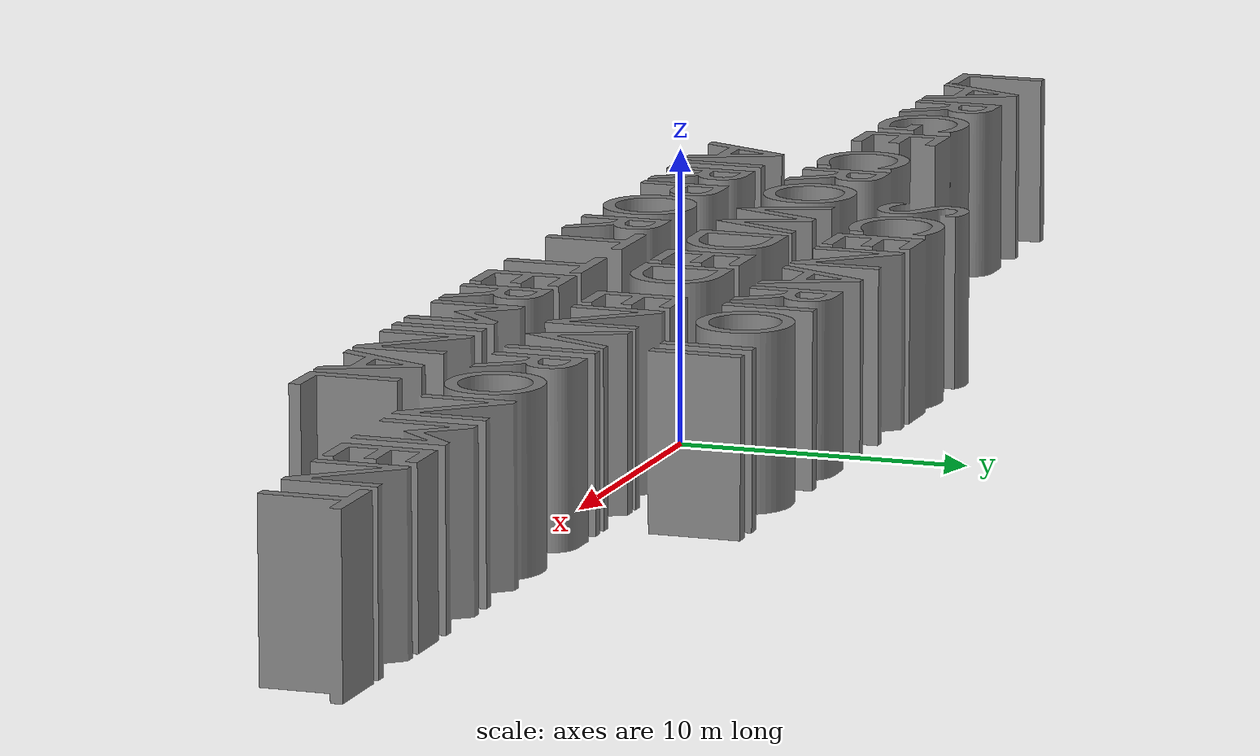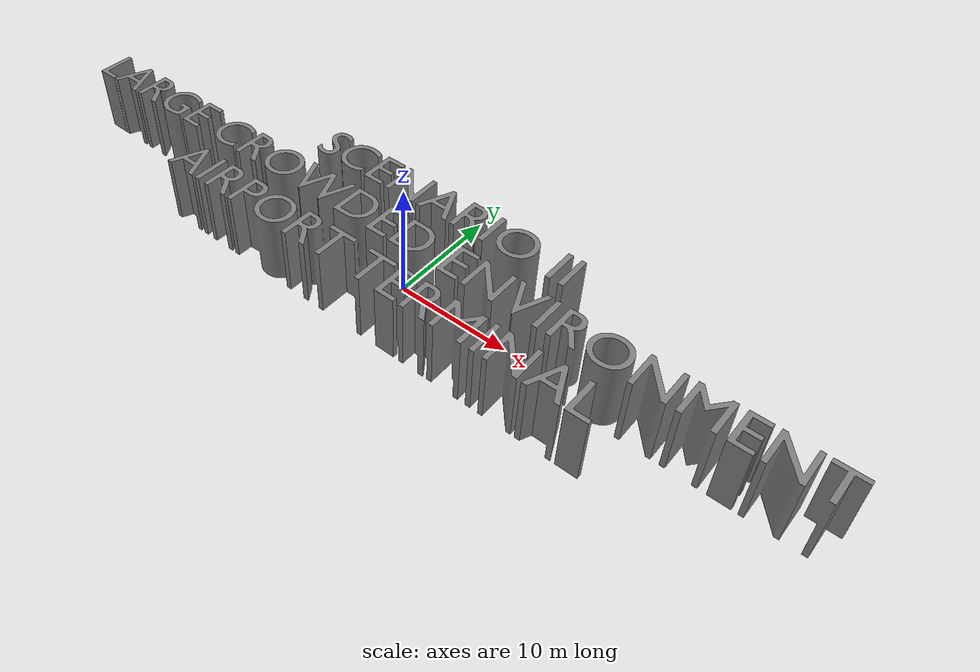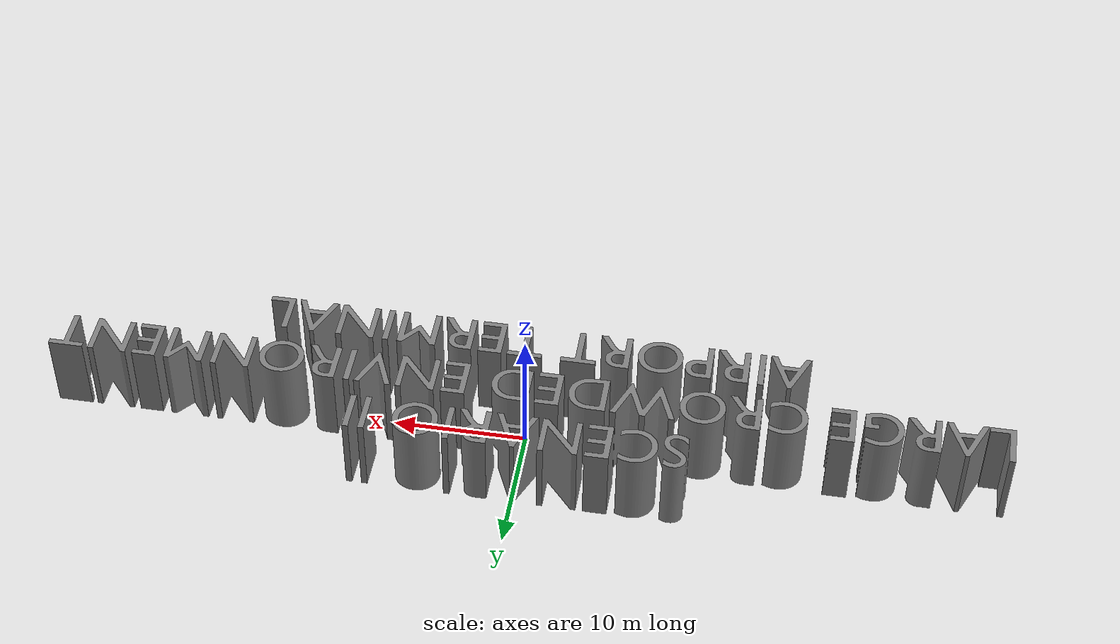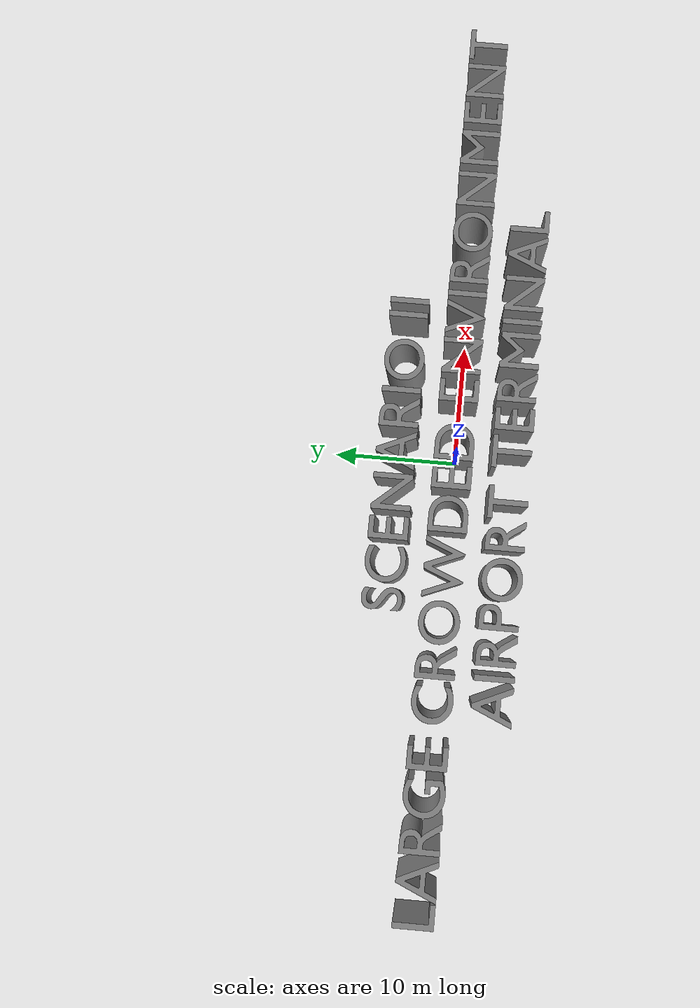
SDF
<?xml version="1.0" ?>
<sdf version="1.6">
  <model name="airport terminal writing">
    <static>true</static>
    <link name="link">
      <collision name="collision">
        <geometry>
          <mesh>
            <scale>1 1 1</scale>
            <uri>model://airport_terminal/meshes/airport_terminal.stl</uri>
          </mesh>
           <surface>
            <friction>
              <ode>
                <mu>1.2</mu>
                <mu2>1.2</mu2>
              </ode>
            </friction>
          </surface>
        </geometry>
      </collision>
      <visual name="visual">
        <geometry>
          <mesh>
            <scale>1 1 1</scale>
            <uri>model://airport_terminal/meshes/airport_terminal.dae</uri>
          </mesh>
        </geometry>
      </visual>
    </link>
  </model>
</sdf>
